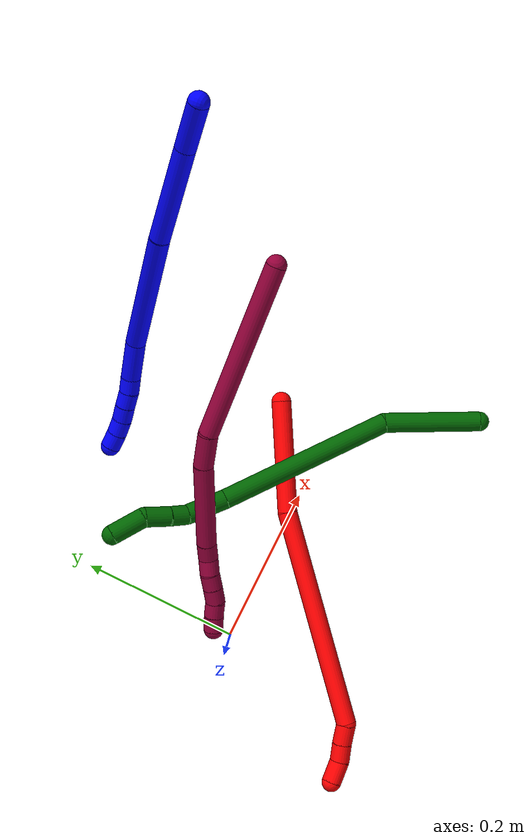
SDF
<sdf version="1.7">
 <world name="default">
  <model name="1">
   <static>0</static>
   <link name="1">
    <collision name="collision-cylinder-e_1_1_4">
     <pose>-0.020638 0.021391 0.005753 -1.30808 -0.750046 0.586164</pose>
     <geometry><cylinder><radius>0.0125</radius><length>0.06055</length></cylinder></geometry>
     <surface>
      <friction><ode><mu>1.16</mu><mu2>1.16</mu2><slip1>0</slip1><slip2>0</slip2></ode></friction>
      <contact><ode><kp>1e+06</kp><kd>1</kd><max_vel>0</max_vel><min_depth>0.001</min_depth></ode></contact>
     </surface>
    </collision>
    <visual name="visual-cylinder-e_1_1_4">
     <pose>-0.020638 0.021391 0.005753 -1.30808 -0.750046 0.586164</pose>
     <geometry><cylinder><radius>0.0125</radius><length>0.06055</length></cylinder></geometry>
     <material><ambient>0 0 1 1</ambient></material>
    </visual>
    <collision name="collision-cylinder-e_2_4_5">
     <pose>-0.086302 0.082443 0.020319 -1.35214 -0.836699 0.685168</pose>
     <geometry><cylinder><radius>0.0125</radius><length>0.121293</length></cylinder></geometry>
     <surface>
      <friction><ode><mu>1.16</mu><mu2>1.16</mu2><slip1>0</slip1><slip2>0</slip2></ode></friction>
      <contact><ode><kp>1e+06</kp><kd>1</kd><max_vel>0</max_vel><min_depth>0.001</min_depth></ode></contact>
     </surface>
    </collision>
    <visual name="visual-cylinder-e_2_4_5">
     <pose>-0.086302 0.082443 0.020319 -1.35214 -0.836699 0.685168</pose>
     <geometry><cylinder><radius>0.0125</radius><length>0.121293</length></cylinder></geometry>
     <material><ambient>0 0 1 1</ambient></material>
    </visual>
    <collision name="collision-cylinder-e_3_5_6">
     <pose>-0.187202 0.182562 0.041622 -1.36706 -0.735607 0.608257</pose>
     <geometry><cylinder><radius>0.0125</radius><length>0.166531</length></cylinder></geometry>
     <surface>
      <friction><ode><mu>1.16</mu><mu2>1.16</mu2><slip1>0</slip1><slip2>0</slip2></ode></friction>
      <contact><ode><kp>1e+06</kp><kd>1</kd><max_vel>0</max_vel><min_depth>0.001</min_depth></ode></contact>
     </surface>
    </collision>
    <visual name="visual-cylinder-e_3_5_6">
     <pose>-0.187202 0.182562 0.041622 -1.36706 -0.735607 0.608257</pose>
     <geometry><cylinder><radius>0.0125</radius><length>0.166531</length></cylinder></geometry>
     <material><ambient>0 0 1 1</ambient></material>
    </visual>
    <collision name="collision-cylinder-e_4_6_7">
     <pose>-0.263489 0.258653 0.053572 -1.60537 -0.916945 0.944677</pose>
     <geometry><cylinder><radius>0.0125</radius><length>0.051432</length></cylinder></geometry>
     <surface>
      <friction><ode><mu>1.16</mu><mu2>1.16</mu2><slip1>0</slip1><slip2>0</slip2></ode></friction>
      <contact><ode><kp>1e+06</kp><kd>1</kd><max_vel>0</max_vel><min_depth>0.001</min_depth></ode></contact>
     </surface>
    </collision>
    <visual name="visual-cylinder-e_4_6_7">
     <pose>-0.263489 0.258653 0.053572 -1.60537 -0.916945 0.944677</pose>
     <geometry><cylinder><radius>0.0125</radius><length>0.051432</length></cylinder></geometry>
     <material><ambient>0 0 1 1</ambient></material>
    </visual>
    <collision name="collision-cylinder-e_5_7_8">
     <pose>-0.292468 0.279344 0.051887 -1.79339 -1.0264 1.22866</pose>
     <geometry><cylinder><radius>0.0125</radius><length>0.020029</length></cylinder></geometry>
     <surface>
      <friction><ode><mu>1.16</mu><mu2>1.16</mu2><slip1>0</slip1><slip2>0</slip2></ode></friction>
      <contact><ode><kp>1e+06</kp><kd>1</kd><max_vel>0</max_vel><min_depth>0.001</min_depth></ode></contact>
     </surface>
    </collision>
    <visual name="visual-cylinder-e_5_7_8">
     <pose>-0.292468 0.279344 0.051887 -1.79339 -1.0264 1.22866</pose>
     <geometry><cylinder><radius>0.0125</radius><length>0.020029</length></cylinder></geometry>
     <material><ambient>0 0 1 1</ambient></material>
    </visual>
    <collision name="collision-cylinder-e_6_8_9">
     <pose>-0.309972 0.289048 0.050832 -1.55131 -1.09143 1.07421</pose>
     <geometry><cylinder><radius>0.0125</radius><length>0.020146</length></cylinder></geometry>
     <surface>
      <friction><ode><mu>1.16</mu><mu2>1.16</mu2><slip1>0</slip1><slip2>0</slip2></ode></friction>
      <contact><ode><kp>1e+06</kp><kd>1</kd><max_vel>0</max_vel><min_depth>0.001</min_depth></ode></contact>
     </surface>
    </collision>
    <visual name="visual-cylinder-e_6_8_9">
     <pose>-0.309972 0.289048 0.050832 -1.55131 -1.09143 1.07421</pose>
     <geometry><cylinder><radius>0.0125</radius><length>0.020146</length></cylinder></geometry>
     <material><ambient>0 0 1 1</ambient></material>
    </visual>
    <collision name="collision-cylinder-e_7_9_10">
     <pose>-0.327579 0.298693 0.050894 -1.57656 -1.04761 1.05261</pose>
     <geometry><cylinder><radius>0.0125</radius><length>0.020016</length></cylinder></geometry>
     <surface>
      <friction><ode><mu>1.16</mu><mu2>1.16</mu2><slip1>0</slip1><slip2>0</slip2></ode></friction>
      <contact><ode><kp>1e+06</kp><kd>1</kd><max_vel>0</max_vel><min_depth>0.001</min_depth></ode></contact>
     </surface>
    </collision>
    <visual name="visual-cylinder-e_7_9_10">
     <pose>-0.327579 0.298693 0.050894 -1.57656 -1.04761 1.05261</pose>
     <geometry><cylinder><radius>0.0125</radius><length>0.020016</length></cylinder></geometry>
     <material><ambient>0 0 1 1</ambient></material>
    </visual>
    <collision name="collision-cylinder-e_8_10_11">
     <pose>-0.345413 0.307647 0.051481 -1.41634 -1.15911 1.02175</pose>
     <geometry><cylinder><radius>0.0125</radius><length>0.020001</length></cylinder></geometry>
     <surface>
      <friction><ode><mu>1.16</mu><mu2>1.16</mu2><slip1>0</slip1><slip2>0</slip2></ode></friction>
      <contact><ode><kp>1e+06</kp><kd>1</kd><max_vel>0</max_vel><min_depth>0.001</min_depth></ode></contact>
     </surface>
    </collision>
    <visual name="visual-cylinder-e_8_10_11">
     <pose>-0.345413 0.307647 0.051481 -1.41634 -1.15911 1.02175</pose>
     <geometry><cylinder><radius>0.0125</radius><length>0.020001</length></cylinder></geometry>
     <material><ambient>0 0 1 1</ambient></material>
    </visual>
    <collision name="collision-cylinder-e_9_11_2">
     <pose>-0.363948 0.314843 0.053401 -1.18817 -1.2139 0.877162</pose>
     <geometry><cylinder><radius>0.0125</radius><length>0.020001</length></cylinder></geometry>
     <surface>
      <friction><ode><mu>1.16</mu><mu2>1.16</mu2><slip1>0</slip1><slip2>0</slip2></ode></friction>
      <contact><ode><kp>1e+06</kp><kd>1</kd><max_vel>0</max_vel><min_depth>0.001</min_depth></ode></contact>
     </surface>
    </collision>
    <visual name="visual-cylinder-e_9_11_2">
     <pose>-0.363948 0.314843 0.053401 -1.18817 -1.2139 0.877162</pose>
     <geometry><cylinder><radius>0.0125</radius><length>0.020001</length></cylinder></geometry>
     <material><ambient>0 0 1 1</ambient></material>
    </visual>
    <collision name="collision-sphere-2">
     <pose>-0.373318 0.318084 0.054705 0 -0 0</pose>
     <geometry><sphere><radius>0.0125</radius></sphere></geometry>
     <surface>
      <friction><ode><mu>1.16</mu><mu2>1.16</mu2><slip1>0</slip1><slip2>0</slip2></ode></friction>
      <contact><ode><kp>1e+06</kp><kd>1</kd><max_vel>0</max_vel><min_depth>0.001</min_depth></ode></contact>
     </surface>
    </collision>
    <visual name="visual-sphere-2">
     <pose>-0.373318 0.318084 0.054705 0 -0 0</pose>
     <geometry><sphere><radius>0.0125</radius></sphere></geometry>
     <material><ambient>0 0 1 1</ambient></material>
    </visual>
    <collision name="collision-sphere-11">
     <pose>-0.354578 0.311601 0.052096 0 -0 0</pose>
     <geometry><sphere><radius>0.0125</radius></sphere></geometry>
     <surface>
      <friction><ode><mu>1.16</mu><mu2>1.16</mu2><slip1>0</slip1><slip2>0</slip2></ode></friction>
      <contact><ode><kp>1e+06</kp><kd>1</kd><max_vel>0</max_vel><min_depth>0.001</min_depth></ode></contact>
     </surface>
    </collision>
    <visual name="visual-sphere-11">
     <pose>-0.354578 0.311601 0.052096 0 -0 0</pose>
     <geometry><sphere><radius>0.0125</radius></sphere></geometry>
     <material><ambient>0 0 1 1</ambient></material>
    </visual>
    <collision name="collision-sphere-10">
     <pose>-0.336248 0.303693 0.050865 0 -0 0</pose>
     <geometry><sphere><radius>0.0125</radius></sphere></geometry>
     <surface>
      <friction><ode><mu>1.16</mu><mu2>1.16</mu2><slip1>0</slip1><slip2>0</slip2></ode></friction>
      <contact><ode><kp>1e+06</kp><kd>1</kd><max_vel>0</max_vel><min_depth>0.001</min_depth></ode></contact>
     </surface>
    </collision>
    <visual name="visual-sphere-10">
     <pose>-0.336248 0.303693 0.050865 0 -0 0</pose>
     <geometry><sphere><radius>0.0125</radius></sphere></geometry>
     <material><ambient>0 0 1 1</ambient></material>
    </visual>
    <collision name="collision-sphere-9">
     <pose>-0.31891 0.293693 0.050923 0 -0 0</pose>
     <geometry><sphere><radius>0.0125</radius></sphere></geometry>
     <surface>
      <friction><ode><mu>1.16</mu><mu2>1.16</mu2><slip1>0</slip1><slip2>0</slip2></ode></friction>
      <contact><ode><kp>1e+06</kp><kd>1</kd><max_vel>0</max_vel><min_depth>0.001</min_depth></ode></contact>
     </surface>
    </collision>
    <visual name="visual-sphere-9">
     <pose>-0.31891 0.293693 0.050923 0 -0 0</pose>
     <geometry><sphere><radius>0.0125</radius></sphere></geometry>
     <material><ambient>0 0 1 1</ambient></material>
    </visual>
    <collision name="collision-sphere-4">
     <pose>-0.041275 0.042782 0.011506 0 -0 0</pose>
     <geometry><sphere><radius>0.0125</radius></sphere></geometry>
     <surface>
      <friction><ode><mu>1.16</mu><mu2>1.16</mu2><slip1>0</slip1><slip2>0</slip2></ode></friction>
      <contact><ode><kp>1e+06</kp><kd>1</kd><max_vel>0</max_vel><min_depth>0.001</min_depth></ode></contact>
     </surface>
    </collision>
    <visual name="visual-sphere-4">
     <pose>-0.041275 0.042782 0.011506 0 -0 0</pose>
     <geometry><sphere><radius>0.0125</radius></sphere></geometry>
     <material><ambient>0 0 1 1</ambient></material>
    </visual>
    <collision name="collision-sphere-1">
     <geometry><sphere><radius>0.0125</radius></sphere></geometry>
     <surface>
      <friction><ode><mu>1.16</mu><mu2>1.16</mu2><slip1>0</slip1><slip2>0</slip2></ode></friction>
      <contact><ode><kp>1e+06</kp><kd>1</kd><max_vel>0</max_vel><min_depth>0.001</min_depth></ode></contact>
     </surface>
    </collision>
    <visual name="visual-sphere-1">
     <geometry><sphere><radius>0.0125</radius></sphere></geometry>
     <material><ambient>0 0 1 1</ambient></material>
    </visual>
    <collision name="collision-sphere-8">
     <pose>-0.301035 0.284403 0.050742 0 -0 0</pose>
     <geometry><sphere><radius>0.0125</radius></sphere></geometry>
     <surface>
      <friction><ode><mu>1.16</mu><mu2>1.16</mu2><slip1>0</slip1><slip2>0</slip2></ode></friction>
      <contact><ode><kp>1e+06</kp><kd>1</kd><max_vel>0</max_vel><min_depth>0.001</min_depth></ode></contact>
     </surface>
    </collision>
    <visual name="visual-sphere-8">
     <pose>-0.301035 0.284403 0.050742 0 -0 0</pose>
     <geometry><sphere><radius>0.0125</radius></sphere></geometry>
     <material><ambient>0 0 1 1</ambient></material>
    </visual>
    <collision name="collision-sphere-5">
     <pose>-0.131328 0.122104 0.029131 0 -0 0</pose>
     <geometry><sphere><radius>0.0125</radius></sphere></geometry>
     <surface>
      <friction><ode><mu>1.16</mu><mu2>1.16</mu2><slip1>0</slip1><slip2>0</slip2></ode></friction>
      <contact><ode><kp>1e+06</kp><kd>1</kd><max_vel>0</max_vel><min_depth>0.001</min_depth></ode></contact>
     </surface>
    </collision>
    <visual name="visual-sphere-5">
     <pose>-0.131328 0.122104 0.029131 0 -0 0</pose>
     <geometry><sphere><radius>0.0125</radius></sphere></geometry>
     <material><ambient>0 0 1 1</ambient></material>
    </visual>
    <collision name="collision-sphere-6">
     <pose>-0.243077 0.24302 0.054113 0 -0 0</pose>
     <geometry><sphere><radius>0.0125</radius></sphere></geometry>
     <surface>
      <friction><ode><mu>1.16</mu><mu2>1.16</mu2><slip1>0</slip1><slip2>0</slip2></ode></friction>
      <contact><ode><kp>1e+06</kp><kd>1</kd><max_vel>0</max_vel><min_depth>0.001</min_depth></ode></contact>
     </surface>
    </collision>
    <visual name="visual-sphere-6">
     <pose>-0.243077 0.24302 0.054113 0 -0 0</pose>
     <geometry><sphere><radius>0.0125</radius></sphere></geometry>
     <material><ambient>0 0 1 1</ambient></material>
    </visual>
    <collision name="collision-sphere-7">
     <pose>-0.283901 0.274285 0.053032 0 -0 0</pose>
     <geometry><sphere><radius>0.0125</radius></sphere></geometry>
     <surface>
      <friction><ode><mu>1.16</mu><mu2>1.16</mu2><slip1>0</slip1><slip2>0</slip2></ode></friction>
      <contact><ode><kp>1e+06</kp><kd>1</kd><max_vel>0</max_vel><min_depth>0.001</min_depth></ode></contact>
     </surface>
    </collision>
    <visual name="visual-sphere-7">
     <pose>-0.283901 0.274285 0.053032 0 -0 0</pose>
     <geometry><sphere><radius>0.0125</radius></sphere></geometry>
     <material><ambient>0 0 1 1</ambient></material>
    </visual>
    <inertial>
     <pose>-0.178583 0.169695 0.035359 0 -0 0</pose>
     <mass>0.5</mass>
     <inertia><ixx>0.000556</ixx><ixy>0</ixy><ixz>0</ixz><iyy>0.000608</iyy><iyz>0</iyz><izz>2e-06</izz></inertia>
    </inertial>
   </link>
   <pose>0.524957 0.285271 0.331206 -1.88011 0.004391 -0.009671</pose>
  </model>
  <model name="2">
   <static>0</static>
   <link name="2">
    <collision name="collision-cylinder-e_1_1_4">
     <pose>-0.042229 -0.039448 0.041165 0.764108 -0.637508 -0.263654</pose>
     <geometry><cylinder><radius>0.0125</radius><length>0.141901</length></cylinder></geometry>
     <surface>
      <friction><ode><mu>1.16</mu><mu2>1.16</mu2><slip1>0</slip1><slip2>0</slip2></ode></friction>
      <contact><ode><kp>1e+06</kp><kd>1</kd><max_vel>0</max_vel><min_depth>0.001</min_depth></ode></contact>
     </surface>
    </collision>
    <visual name="visual-cylinder-e_1_1_4">
     <pose>-0.042229 -0.039448 0.041165 0.764108 -0.637508 -0.263654</pose>
     <geometry><cylinder><radius>0.0125</radius><length>0.141901</length></cylinder></geometry>
     <material><ambient>1 0 0 1</ambient></material>
    </visual>
    <collision name="collision-cylinder-e_2_4_5">
     <pose>-0.142132 -0.172266 0.168196 0.827233 -0.426721 -0.189629</pose>
     <geometry><cylinder><radius>0.0125</radius><length>0.278691</length></cylinder></geometry>
     <surface>
      <friction><ode><mu>1.16</mu><mu2>1.16</mu2><slip1>0</slip1><slip2>0</slip2></ode></friction>
      <contact><ode><kp>1e+06</kp><kd>1</kd><max_vel>0</max_vel><min_depth>0.001</min_depth></ode></contact>
     </surface>
    </collision>
    <visual name="visual-cylinder-e_2_4_5">
     <pose>-0.142132 -0.172266 0.168196 0.827233 -0.426721 -0.189629</pose>
     <geometry><cylinder><radius>0.0125</radius><length>0.278691</length></cylinder></geometry>
     <material><ambient>1 0 0 1</ambient></material>
    </visual>
    <collision name="collision-cylinder-e_3_5_6">
     <pose>-0.210609 -0.271937 0.258849 0.921213 -0.938615 -0.493011</pose>
     <geometry><cylinder><radius>0.0125</radius><length>0.026783</length></cylinder></geometry>
     <surface>
      <friction><ode><mu>1.16</mu><mu2>1.16</mu2><slip1>0</slip1><slip2>0</slip2></ode></friction>
      <contact><ode><kp>1e+06</kp><kd>1</kd><max_vel>0</max_vel><min_depth>0.001</min_depth></ode></contact>
     </surface>
    </collision>
    <visual name="visual-cylinder-e_3_5_6">
     <pose>-0.210609 -0.271937 0.258849 0.921213 -0.938615 -0.493011</pose>
     <geometry><cylinder><radius>0.0125</radius><length>0.026783</length></cylinder></geometry>
     <material><ambient>1 0 0 1</ambient></material>
    </visual>
    <collision name="collision-cylinder-e_4_6_7">
     <pose>-0.230439 -0.284238 0.268657 0.873883 -0.856595 -0.420181</pose>
     <geometry><cylinder><radius>0.0125</radius><length>0.023891</length></cylinder></geometry>
     <surface>
      <friction><ode><mu>1.16</mu><mu2>1.16</mu2><slip1>0</slip1><slip2>0</slip2></ode></friction>
      <contact><ode><kp>1e+06</kp><kd>1</kd><max_vel>0</max_vel><min_depth>0.001</min_depth></ode></contact>
     </surface>
    </collision>
    <visual name="visual-cylinder-e_4_6_7">
     <pose>-0.230439 -0.284238 0.268657 0.873883 -0.856595 -0.420181</pose>
     <geometry><cylinder><radius>0.0125</radius><length>0.023891</length></cylinder></geometry>
     <material><ambient>1 0 0 1</ambient></material>
    </visual>
    <collision name="collision-cylinder-e_5_7_2">
     <pose>-0.251486 -0.293252 0.280948 0.393015 -0.991182 -0.214413</pose>
     <geometry><cylinder><radius>0.0125</radius><length>0.028733</length></cylinder></geometry>
     <surface>
      <friction><ode><mu>1.16</mu><mu2>1.16</mu2><slip1>0</slip1><slip2>0</slip2></ode></friction>
      <contact><ode><kp>1e+06</kp><kd>1</kd><max_vel>0</max_vel><min_depth>0.001</min_depth></ode></contact>
     </surface>
    </collision>
    <visual name="visual-cylinder-e_5_7_2">
     <pose>-0.251486 -0.293252 0.280948 0.393015 -0.991182 -0.214413</pose>
     <geometry><cylinder><radius>0.0125</radius><length>0.028733</length></cylinder></geometry>
     <material><ambient>1 0 0 1</ambient></material>
    </visual>
    <collision name="collision-sphere-2">
     <pose>-0.263506 -0.296265 0.288217 0 -0 0</pose>
     <geometry><sphere><radius>0.0125</radius></sphere></geometry>
     <surface>
      <friction><ode><mu>1.16</mu><mu2>1.16</mu2><slip1>0</slip1><slip2>0</slip2></ode></friction>
      <contact><ode><kp>1e+06</kp><kd>1</kd><max_vel>0</max_vel><min_depth>0.001</min_depth></ode></contact>
     </surface>
    </collision>
    <visual name="visual-sphere-2">
     <pose>-0.263506 -0.296265 0.288217 0 -0 0</pose>
     <geometry><sphere><radius>0.0125</radius></sphere></geometry>
     <material><ambient>1 0 0 1</ambient></material>
    </visual>
    <collision name="collision-sphere-7">
     <pose>-0.239466 -0.290238 0.27368 0 -0 0</pose>
     <geometry><sphere><radius>0.0125</radius></sphere></geometry>
     <surface>
      <friction><ode><mu>1.16</mu><mu2>1.16</mu2><slip1>0</slip1><slip2>0</slip2></ode></friction>
      <contact><ode><kp>1e+06</kp><kd>1</kd><max_vel>0</max_vel><min_depth>0.001</min_depth></ode></contact>
     </surface>
    </collision>
    <visual name="visual-sphere-7">
     <pose>-0.239466 -0.290238 0.27368 0 -0 0</pose>
     <geometry><sphere><radius>0.0125</radius></sphere></geometry>
     <material><ambient>1 0 0 1</ambient></material>
    </visual>
    <collision name="collision-sphere-6">
     <pose>-0.221413 -0.278238 0.263635 0 -0 0</pose>
     <geometry><sphere><radius>0.0125</radius></sphere></geometry>
     <surface>
      <friction><ode><mu>1.16</mu><mu2>1.16</mu2><slip1>0</slip1><slip2>0</slip2></ode></friction>
      <contact><ode><kp>1e+06</kp><kd>1</kd><max_vel>0</max_vel><min_depth>0.001</min_depth></ode></contact>
     </surface>
    </collision>
    <visual name="visual-sphere-6">
     <pose>-0.221413 -0.278238 0.263635 0 -0 0</pose>
     <geometry><sphere><radius>0.0125</radius></sphere></geometry>
     <material><ambient>1 0 0 1</ambient></material>
    </visual>
    <collision name="collision-sphere-5">
     <pose>-0.199806 -0.265635 0.254063 0 -0 0</pose>
     <geometry><sphere><radius>0.0125</radius></sphere></geometry>
     <surface>
      <friction><ode><mu>1.16</mu><mu2>1.16</mu2><slip1>0</slip1><slip2>0</slip2></ode></friction>
      <contact><ode><kp>1e+06</kp><kd>1</kd><max_vel>0</max_vel><min_depth>0.001</min_depth></ode></contact>
     </surface>
    </collision>
    <visual name="visual-sphere-5">
     <pose>-0.199806 -0.265635 0.254063 0 -0 0</pose>
     <geometry><sphere><radius>0.0125</radius></sphere></geometry>
     <material><ambient>1 0 0 1</ambient></material>
    </visual>
    <collision name="collision-sphere-1">
     <geometry><sphere><radius>0.0125</radius></sphere></geometry>
     <surface>
      <friction><ode><mu>1.16</mu><mu2>1.16</mu2><slip1>0</slip1><slip2>0</slip2></ode></friction>
      <contact><ode><kp>1e+06</kp><kd>1</kd><max_vel>0</max_vel><min_depth>0.001</min_depth></ode></contact>
     </surface>
    </collision>
    <visual name="visual-sphere-1">
     <geometry><sphere><radius>0.0125</radius></sphere></geometry>
     <material><ambient>1 0 0 1</ambient></material>
    </visual>
    <collision name="collision-sphere-4">
     <pose>-0.084459 -0.078896 0.082329 0 -0 0</pose>
     <geometry><sphere><radius>0.0125</radius></sphere></geometry>
     <surface>
      <friction><ode><mu>1.16</mu><mu2>1.16</mu2><slip1>0</slip1><slip2>0</slip2></ode></friction>
      <contact><ode><kp>1e+06</kp><kd>1</kd><max_vel>0</max_vel><min_depth>0.001</min_depth></ode></contact>
     </surface>
    </collision>
    <visual name="visual-sphere-4">
     <pose>-0.084459 -0.078896 0.082329 0 -0 0</pose>
     <geometry><sphere><radius>0.0125</radius></sphere></geometry>
     <material><ambient>1 0 0 1</ambient></material>
    </visual>
    <inertial>
     <pose>-0.127951 -0.152214 0.14828 0 -0 0</pose>
     <mass>0.5</mass>
     <inertia>
      <ixx>0.001431</ixx>
      <ixy>0</ixy>
      <ixz>0</ixz>
      <iyy>0.001126</iyy>
      <iyz>0</iyz>
      <izz>0.002279</izz>
     </inertia>
    </inertial>
   </link>
   <pose>0.297724 0.0742 0.012527 0.572448 -0.298946 -0.380777</pose>
  </model>
  <model name="6">
   <static>0</static>
   <link name="6">
    <collision name="collision-cylinder-e_1_1_4">
     <pose>-0.031332 -0.012402 -0.050602 2.90123 -0.541429 -2.32075</pose>
     <geometry><cylinder><radius>0.0125</radius><length>0.121591</length></cylinder></geometry>
     <surface>
      <friction><ode><mu>1.16</mu><mu2>1.16</mu2><slip1>0</slip1><slip2>0</slip2></ode></friction>
      <contact><ode><kp>1e+06</kp><kd>1</kd><max_vel>0</max_vel><min_depth>0.001</min_depth></ode></contact>
     </surface>
    </collision>
    <visual name="visual-cylinder-e_1_1_4">
     <pose>-0.031332 -0.012402 -0.050602 2.90123 -0.541429 -2.32075</pose>
     <geometry><cylinder><radius>0.0125</radius><length>0.121591</length></cylinder></geometry>
     <material><ambient>0 0.392157 0.003922 1</ambient></material>
    </visual>
    <collision name="collision-cylinder-e_2_4_5">
     <pose>-0.154934 -0.028267 -0.165917 3.08813 -0.95851 -3.03879</pose>
     <geometry><cylinder><radius>0.0125</radius><length>0.22551</length></cylinder></geometry>
     <surface>
      <friction><ode><mu>1.16</mu><mu2>1.16</mu2><slip1>0</slip1><slip2>0</slip2></ode></friction>
      <contact><ode><kp>1e+06</kp><kd>1</kd><max_vel>0</max_vel><min_depth>0.001</min_depth></ode></contact>
     </surface>
    </collision>
    <visual name="visual-cylinder-e_2_4_5">
     <pose>-0.154934 -0.028267 -0.165917 3.08813 -0.95851 -3.03879</pose>
     <geometry><cylinder><radius>0.0125</radius><length>0.22551</length></cylinder></geometry>
     <material><ambient>0 0.392157 0.003922 1</ambient></material>
    </visual>
    <collision name="collision-cylinder-e_3_5_6">
     <pose>-0.267034 -0.028832 -0.24775 -2.97392 -0.851527 2.77515</pose>
     <geometry><cylinder><radius>0.0125</radius><length>0.052714</length></cylinder></geometry>
     <surface>
      <friction><ode><mu>1.16</mu><mu2>1.16</mu2><slip1>0</slip1><slip2>0</slip2></ode></friction>
      <contact><ode><kp>1e+06</kp><kd>1</kd><max_vel>0</max_vel><min_depth>0.001</min_depth></ode></contact>
     </surface>
    </collision>
    <visual name="visual-cylinder-e_3_5_6">
     <pose>-0.267034 -0.028832 -0.24775 -2.97392 -0.851527 2.77515</pose>
     <geometry><cylinder><radius>0.0125</radius><length>0.052714</length></cylinder></geometry>
     <material><ambient>0 0.392157 0.003922 1</ambient></material>
    </visual>
    <collision name="collision-cylinder-e_4_6_7">
     <pose>-0.292637 -0.023756 -0.274366 -2.91615 -0.535128 2.35837</pose>
     <geometry><cylinder><radius>0.0125</radius><length>0.022649</length></cylinder></geometry>
     <surface>
      <friction><ode><mu>1.16</mu><mu2>1.16</mu2><slip1>0</slip1><slip2>0</slip2></ode></friction>
      <contact><ode><kp>1e+06</kp><kd>1</kd><max_vel>0</max_vel><min_depth>0.001</min_depth></ode></contact>
     </surface>
    </collision>
    <visual name="visual-cylinder-e_4_6_7">
     <pose>-0.292637 -0.023756 -0.274366 -2.91615 -0.535128 2.35837</pose>
     <geometry><cylinder><radius>0.0125</radius><length>0.022649</length></cylinder></geometry>
     <material><ambient>0 0.392157 0.003922 1</ambient></material>
    </visual>
    <collision name="collision-cylinder-e_5_7_8">
     <pose>-0.306318 -0.019605 -0.298232 -3.00508 -0.499004 2.61736</pose>
     <geometry><cylinder><radius>0.0125</radius><length>0.033041</length></cylinder></geometry>
     <surface>
      <friction><ode><mu>1.16</mu><mu2>1.16</mu2><slip1>0</slip1><slip2>0</slip2></ode></friction>
      <contact><ode><kp>1e+06</kp><kd>1</kd><max_vel>0</max_vel><min_depth>0.001</min_depth></ode></contact>
     </surface>
    </collision>
    <visual name="visual-cylinder-e_5_7_8">
     <pose>-0.306318 -0.019605 -0.298232 -3.00508 -0.499004 2.61736</pose>
     <geometry><cylinder><radius>0.0125</radius><length>0.033041</length></cylinder></geometry>
     <material><ambient>0 0.392157 0.003922 1</ambient></material>
    </visual>
    <collision name="collision-cylinder-e_6_8_2">
     <pose>-0.333106 -0.017655 -0.324368 3.13956 -1.01361 -3.13794</pose>
     <geometry><cylinder><radius>0.0125</radius><length>0.044496</length></cylinder></geometry>
     <surface>
      <friction><ode><mu>1.16</mu><mu2>1.16</mu2><slip1>0</slip1><slip2>0</slip2></ode></friction>
      <contact><ode><kp>1e+06</kp><kd>1</kd><max_vel>0</max_vel><min_depth>0.001</min_depth></ode></contact>
     </surface>
    </collision>
    <visual name="visual-cylinder-e_6_8_2">
     <pose>-0.333106 -0.017655 -0.324368 3.13956 -1.01361 -3.13794</pose>
     <geometry><cylinder><radius>0.0125</radius><length>0.044496</length></cylinder></geometry>
     <material><ambient>0 0.392157 0.003922 1</ambient></material>
    </visual>
    <collision name="collision-sphere-2">
     <pose>-0.351989 -0.017678 -0.336132 0 -0 0</pose>
     <geometry><sphere><radius>0.0125</radius></sphere></geometry>
     <surface>
      <friction><ode><mu>1.16</mu><mu2>1.16</mu2><slip1>0</slip1><slip2>0</slip2></ode></friction>
      <contact><ode><kp>1e+06</kp><kd>1</kd><max_vel>0</max_vel><min_depth>0.001</min_depth></ode></contact>
     </surface>
    </collision>
    <visual name="visual-sphere-2">
     <pose>-0.351989 -0.017678 -0.336132 0 -0 0</pose>
     <geometry><sphere><radius>0.0125</radius></sphere></geometry>
     <material><ambient>0 0.392157 0.003922 1</ambient></material>
    </visual>
    <collision name="collision-sphere-4">
     <pose>-0.062663 -0.024805 -0.101204 0 -0 0</pose>
     <geometry><sphere><radius>0.0125</radius></sphere></geometry>
     <surface>
      <friction><ode><mu>1.16</mu><mu2>1.16</mu2><slip1>0</slip1><slip2>0</slip2></ode></friction>
      <contact><ode><kp>1e+06</kp><kd>1</kd><max_vel>0</max_vel><min_depth>0.001</min_depth></ode></contact>
     </surface>
    </collision>
    <visual name="visual-sphere-4">
     <pose>-0.062663 -0.024805 -0.101204 0 -0 0</pose>
     <geometry><sphere><radius>0.0125</radius></sphere></geometry>
     <material><ambient>0 0.392157 0.003922 1</ambient></material>
    </visual>
    <collision name="collision-sphere-1">
     <geometry><sphere><radius>0.0125</radius></sphere></geometry>
     <surface>
      <friction><ode><mu>1.16</mu><mu2>1.16</mu2><slip1>0</slip1><slip2>0</slip2></ode></friction>
      <contact><ode><kp>1e+06</kp><kd>1</kd><max_vel>0</max_vel><min_depth>0.001</min_depth></ode></contact>
     </surface>
    </collision>
    <visual name="visual-sphere-1">
     <geometry><sphere><radius>0.0125</radius></sphere></geometry>
     <material><ambient>0 0.392157 0.003922 1</ambient></material>
    </visual>
    <collision name="collision-sphere-8">
     <pose>-0.314224 -0.017631 -0.312603 0 -0 0</pose>
     <geometry><sphere><radius>0.0125</radius></sphere></geometry>
     <surface>
      <friction><ode><mu>1.16</mu><mu2>1.16</mu2><slip1>0</slip1><slip2>0</slip2></ode></friction>
      <contact><ode><kp>1e+06</kp><kd>1</kd><max_vel>0</max_vel><min_depth>0.001</min_depth></ode></contact>
     </surface>
    </collision>
    <visual name="visual-sphere-8">
     <pose>-0.314224 -0.017631 -0.312603 0 -0 0</pose>
     <geometry><sphere><radius>0.0125</radius></sphere></geometry>
     <material><ambient>0 0.392157 0.003922 1</ambient></material>
    </visual>
    <collision name="collision-sphere-5">
     <pose>-0.247206 -0.03173 -0.230629 0 -0 0</pose>
     <geometry><sphere><radius>0.0125</radius></sphere></geometry>
     <surface>
      <friction><ode><mu>1.16</mu><mu2>1.16</mu2><slip1>0</slip1><slip2>0</slip2></ode></friction>
      <contact><ode><kp>1e+06</kp><kd>1</kd><max_vel>0</max_vel><min_depth>0.001</min_depth></ode></contact>
     </surface>
    </collision>
    <visual name="visual-sphere-5">
     <pose>-0.247206 -0.03173 -0.230629 0 -0 0</pose>
     <geometry><sphere><radius>0.0125</radius></sphere></geometry>
     <material><ambient>0 0.392157 0.003922 1</ambient></material>
    </visual>
    <collision name="collision-sphere-6">
     <pose>-0.286862 -0.025934 -0.264872 0 -0 0</pose>
     <geometry><sphere><radius>0.0125</radius></sphere></geometry>
     <surface>
      <friction><ode><mu>1.16</mu><mu2>1.16</mu2><slip1>0</slip1><slip2>0</slip2></ode></friction>
      <contact><ode><kp>1e+06</kp><kd>1</kd><max_vel>0</max_vel><min_depth>0.001</min_depth></ode></contact>
     </surface>
    </collision>
    <visual name="visual-sphere-6">
     <pose>-0.286862 -0.025934 -0.264872 0 -0 0</pose>
     <geometry><sphere><radius>0.0125</radius></sphere></geometry>
     <material><ambient>0 0.392157 0.003922 1</ambient></material>
    </visual>
    <collision name="collision-sphere-7">
     <pose>-0.298412 -0.021579 -0.283861 0 -0 0</pose>
     <geometry><sphere><radius>0.0125</radius></sphere></geometry>
     <surface>
      <friction><ode><mu>1.16</mu><mu2>1.16</mu2><slip1>0</slip1><slip2>0</slip2></ode></friction>
      <contact><ode><kp>1e+06</kp><kd>1</kd><max_vel>0</max_vel><min_depth>0.001</min_depth></ode></contact>
     </surface>
    </collision>
    <visual name="visual-sphere-7">
     <pose>-0.298412 -0.021579 -0.283861 0 -0 0</pose>
     <geometry><sphere><radius>0.0125</radius></sphere></geometry>
     <material><ambient>0 0.392157 0.003922 1</ambient></material>
    </visual>
    <inertial>
     <pose>-0.168792 -0.022748 -0.174259 0 -0 0</pose>
     <mass>0.5</mass>
     <inertia>
      <ixx>-0.000835</ixx>
      <ixy>0</ixy>
      <ixz>0</ixz>
      <iyy>0.000958</iyy>
      <iyz>0</iyz>
      <izz>0.000923</izz>
     </inertia>
    </inertial>
   </link>
   <pose>0.387453 -0.163086 0.014092 1.87628 -0.023308 -0.066012</pose>
  </model>
  <model name="8">
   <static>0</static>
   <link name="8">
    <collision name="collision-cylinder-e_1_1_4">
     <pose>-0.062608 -0.026342 -0.086841 2.84708 -0.60392 -2.25273</pose>
     <geometry><cylinder><radius>0.0125</radius><length>0.2205</length></cylinder></geometry>
     <surface>
      <friction><ode><mu>1.16</mu><mu2>1.16</mu2><slip1>0</slip1><slip2>0</slip2></ode></friction>
      <contact><ode><kp>1e+06</kp><kd>1</kd><max_vel>0</max_vel><min_depth>0.001</min_depth></ode></contact>
     </surface>
    </collision>
    <visual name="visual-cylinder-e_1_1_4">
     <pose>-0.062608 -0.026342 -0.086841 2.84708 -0.60392 -2.25273</pose>
     <geometry><cylinder><radius>0.0125</radius><length>0.2205</length></cylinder></geometry>
     <material><ambient>0.584314 0 0.227451 1</ambient></material>
    </visual>
    <collision name="collision-cylinder-e_2_4_5">
     <pose>-0.132724 -0.058599 -0.193383 2.84991 -0.349964 -1.75505</pose>
     <geometry><cylinder><radius>0.0125</radius><length>0.043794</length></cylinder></geometry>
     <surface>
      <friction><ode><mu>1.16</mu><mu2>1.16</mu2><slip1>0</slip1><slip2>0</slip2></ode></friction>
      <contact><ode><kp>1e+06</kp><kd>1</kd><max_vel>0</max_vel><min_depth>0.001</min_depth></ode></contact>
     </surface>
    </collision>
    <visual name="visual-cylinder-e_2_4_5">
     <pose>-0.132724 -0.058599 -0.193383 2.84991 -0.349964 -1.75505</pose>
     <geometry><cylinder><radius>0.0125</radius><length>0.043794</length></cylinder></geometry>
     <material><ambient>0.584314 0 0.227451 1</ambient></material>
    </visual>
    <collision name="collision-cylinder-e_3_5_6">
     <pose>-0.151885 -0.08479 -0.263736 2.76083 -0.210427 -1.00258</pose>
     <geometry><cylinder><radius>0.0125</radius><length>0.11158</length></cylinder></geometry>
     <surface>
      <friction><ode><mu>1.16</mu><mu2>1.16</mu2><slip1>0</slip1><slip2>0</slip2></ode></friction>
      <contact><ode><kp>1e+06</kp><kd>1</kd><max_vel>0</max_vel><min_depth>0.001</min_depth></ode></contact>
     </surface>
    </collision>
    <visual name="visual-cylinder-e_3_5_6">
     <pose>-0.151885 -0.08479 -0.263736 2.76083 -0.210427 -1.00258</pose>
     <geometry><cylinder><radius>0.0125</radius><length>0.11158</length></cylinder></geometry>
     <material><ambient>0.584314 0 0.227451 1</ambient></material>
    </visual>
    <collision name="collision-cylinder-e_4_6_7">
     <pose>-0.16519 -0.109374 -0.324942 2.75404 -0.143929 -0.704094</pose>
     <geometry><cylinder><radius>0.0125</radius><length>0.023037</length></cylinder></geometry>
     <surface>
      <friction><ode><mu>1.16</mu><mu2>1.16</mu2><slip1>0</slip1><slip2>0</slip2></ode></friction>
      <contact><ode><kp>1e+06</kp><kd>1</kd><max_vel>0</max_vel><min_depth>0.001</min_depth></ode></contact>
     </surface>
    </collision>
    <visual name="visual-cylinder-e_4_6_7">
     <pose>-0.16519 -0.109374 -0.324942 2.75404 -0.143929 -0.704094</pose>
     <geometry><cylinder><radius>0.0125</radius><length>0.023037</length></cylinder></geometry>
     <material><ambient>0.584314 0 0.227451 1</ambient></material>
    </visual>
    <collision name="collision-cylinder-e_5_7_8">
     <pose>-0.169577 -0.119857 -0.343447 2.48131 -0.26521 -0.742399</pose>
     <geometry><cylinder><radius>0.0125</radius><length>0.020864</length></cylinder></geometry>
     <surface>
      <friction><ode><mu>1.16</mu><mu2>1.16</mu2><slip1>0</slip1><slip2>0</slip2></ode></friction>
      <contact><ode><kp>1e+06</kp><kd>1</kd><max_vel>0</max_vel><min_depth>0.001</min_depth></ode></contact>
     </surface>
    </collision>
    <visual name="visual-cylinder-e_5_7_8">
     <pose>-0.169577 -0.119857 -0.343447 2.48131 -0.26521 -0.742399</pose>
     <geometry><cylinder><radius>0.0125</radius><length>0.020864</length></cylinder></geometry>
     <material><ambient>0.584314 0 0.227451 1</ambient></material>
    </visual>
    <collision name="collision-cylinder-e_6_8_9">
     <pose>-0.173487 -0.131359 -0.359784 2.57556 -0.117802 -0.400107</pose>
     <geometry><cylinder><radius>0.0125</radius><length>0.020009</length></cylinder></geometry>
     <surface>
      <friction><ode><mu>1.16</mu><mu2>1.16</mu2><slip1>0</slip1><slip2>0</slip2></ode></friction>
      <contact><ode><kp>1e+06</kp><kd>1</kd><max_vel>0</max_vel><min_depth>0.001</min_depth></ode></contact>
     </surface>
    </collision>
    <visual name="visual-cylinder-e_6_8_9">
     <pose>-0.173487 -0.131359 -0.359784 2.57556 -0.117802 -0.400107</pose>
     <geometry><cylinder><radius>0.0125</radius><length>0.020009</length></cylinder></geometry>
     <material><ambient>0.584314 0 0.227451 1</ambient></material>
    </visual>
    <collision name="collision-cylinder-e_7_9_10">
     <pose>-0.175993 -0.141852 -0.376664 2.59536 -0.132991 -0.466804</pose>
     <geometry><cylinder><radius>0.0125</radius><length>0.02006</length></cylinder></geometry>
     <surface>
      <friction><ode><mu>1.16</mu><mu2>1.16</mu2><slip1>0</slip1><slip2>0</slip2></ode></friction>
      <contact><ode><kp>1e+06</kp><kd>1</kd><max_vel>0</max_vel><min_depth>0.001</min_depth></ode></contact>
     </surface>
    </collision>
    <visual name="visual-cylinder-e_7_9_10">
     <pose>-0.175993 -0.141852 -0.376664 2.59536 -0.132991 -0.466804</pose>
     <geometry><cylinder><radius>0.0125</radius><length>0.02006</length></cylinder></geometry>
     <material><ambient>0.584314 0 0.227451 1</ambient></material>
    </visual>
    <collision name="collision-cylinder-e_8_10_11">
     <pose>-0.181158 -0.151146 -0.393513 2.68247 -0.390426 -1.40452</pose>
     <geometry><cylinder><radius>0.0125</radius><length>0.020156</length></cylinder></geometry>
     <surface>
      <friction><ode><mu>1.16</mu><mu2>1.16</mu2><slip1>0</slip1><slip2>0</slip2></ode></friction>
      <contact><ode><kp>1e+06</kp><kd>1</kd><max_vel>0</max_vel><min_depth>0.001</min_depth></ode></contact>
     </surface>
    </collision>
    <visual name="visual-cylinder-e_8_10_11">
     <pose>-0.181158 -0.151146 -0.393513 2.68247 -0.390426 -1.40452</pose>
     <geometry><cylinder><radius>0.0125</radius><length>0.020156</length></cylinder></geometry>
     <material><ambient>0.584314 0 0.227451 1</ambient></material>
    </visual>
    <collision name="collision-cylinder-e_9_11_2">
     <pose>-0.188034 -0.159788 -0.410259 2.64824 -0.308886 -1.10748</pose>
     <geometry><cylinder><radius>0.0125</radius><length>0.020001</length></cylinder></geometry>
     <surface>
      <friction><ode><mu>1.16</mu><mu2>1.16</mu2><slip1>0</slip1><slip2>0</slip2></ode></friction>
      <contact><ode><kp>1e+06</kp><kd>1</kd><max_vel>0</max_vel><min_depth>0.001</min_depth></ode></contact>
     </surface>
    </collision>
    <visual name="visual-cylinder-e_9_11_2">
     <pose>-0.188034 -0.159788 -0.410259 2.64824 -0.308886 -1.10748</pose>
     <geometry><cylinder><radius>0.0125</radius><length>0.020001</length></cylinder></geometry>
     <material><ambient>0.584314 0 0.227451 1</ambient></material>
    </visual>
    <collision name="collision-sphere-2">
     <pose>-0.191074 -0.1643 -0.41865 0 -0 0</pose>
     <geometry><sphere><radius>0.0125</radius></sphere></geometry>
     <surface>
      <friction><ode><mu>1.16</mu><mu2>1.16</mu2><slip1>0</slip1><slip2>0</slip2></ode></friction>
      <contact><ode><kp>1e+06</kp><kd>1</kd><max_vel>0</max_vel><min_depth>0.001</min_depth></ode></contact>
     </surface>
    </collision>
    <visual name="visual-sphere-2">
     <pose>-0.191074 -0.1643 -0.41865 0 -0 0</pose>
     <geometry><sphere><radius>0.0125</radius></sphere></geometry>
     <material><ambient>0.584314 0 0.227451 1</ambient></material>
    </visual>
    <collision name="collision-sphere-11">
     <pose>-0.184994 -0.155276 -0.401868 0 -0 0</pose>
     <geometry><sphere><radius>0.0125</radius></sphere></geometry>
     <surface>
      <friction><ode><mu>1.16</mu><mu2>1.16</mu2><slip1>0</slip1><slip2>0</slip2></ode></friction>
      <contact><ode><kp>1e+06</kp><kd>1</kd><max_vel>0</max_vel><min_depth>0.001</min_depth></ode></contact>
     </surface>
    </collision>
    <visual name="visual-sphere-11">
     <pose>-0.184994 -0.155276 -0.401868 0 -0 0</pose>
     <geometry><sphere><radius>0.0125</radius></sphere></geometry>
     <material><ambient>0.584314 0 0.227451 1</ambient></material>
    </visual>
    <collision name="collision-sphere-10">
     <pose>-0.177322 -0.147016 -0.385159 0 -0 0</pose>
     <geometry><sphere><radius>0.0125</radius></sphere></geometry>
     <surface>
      <friction><ode><mu>1.16</mu><mu2>1.16</mu2><slip1>0</slip1><slip2>0</slip2></ode></friction>
      <contact><ode><kp>1e+06</kp><kd>1</kd><max_vel>0</max_vel><min_depth>0.001</min_depth></ode></contact>
     </surface>
    </collision>
    <visual name="visual-sphere-10">
     <pose>-0.177322 -0.147016 -0.385159 0 -0 0</pose>
     <geometry><sphere><radius>0.0125</radius></sphere></geometry>
     <material><ambient>0.584314 0 0.227451 1</ambient></material>
    </visual>
    <collision name="collision-sphere-9">
     <pose>-0.174663 -0.136688 -0.368169 0 -0 0</pose>
     <geometry><sphere><radius>0.0125</radius></sphere></geometry>
     <surface>
      <friction><ode><mu>1.16</mu><mu2>1.16</mu2><slip1>0</slip1><slip2>0</slip2></ode></friction>
      <contact><ode><kp>1e+06</kp><kd>1</kd><max_vel>0</max_vel><min_depth>0.001</min_depth></ode></contact>
     </surface>
    </collision>
    <visual name="visual-sphere-9">
     <pose>-0.174663 -0.136688 -0.368169 0 -0 0</pose>
     <geometry><sphere><radius>0.0125</radius></sphere></geometry>
     <material><ambient>0.584314 0 0.227451 1</ambient></material>
    </visual>
    <collision name="collision-sphere-4">
     <pose>-0.125216 -0.052684 -0.173682 0 -0 0</pose>
     <geometry><sphere><radius>0.0125</radius></sphere></geometry>
     <surface>
      <friction><ode><mu>1.16</mu><mu2>1.16</mu2><slip1>0</slip1><slip2>0</slip2></ode></friction>
      <contact><ode><kp>1e+06</kp><kd>1</kd><max_vel>0</max_vel><min_depth>0.001</min_depth></ode></contact>
     </surface>
    </collision>
    <visual name="visual-sphere-4">
     <pose>-0.125216 -0.052684 -0.173682 0 -0 0</pose>
     <geometry><sphere><radius>0.0125</radius></sphere></geometry>
     <material><ambient>0.584314 0 0.227451 1</ambient></material>
    </visual>
    <collision name="collision-sphere-1">
     <geometry><sphere><radius>0.0125</radius></sphere></geometry>
     <surface>
      <friction><ode><mu>1.16</mu><mu2>1.16</mu2><slip1>0</slip1><slip2>0</slip2></ode></friction>
      <contact><ode><kp>1e+06</kp><kd>1</kd><max_vel>0</max_vel><min_depth>0.001</min_depth></ode></contact>
     </surface>
    </collision>
    <visual name="visual-sphere-1">
     <geometry><sphere><radius>0.0125</radius></sphere></geometry>
     <material><ambient>0.584314 0 0.227451 1</ambient></material>
    </visual>
    <collision name="collision-sphere-8">
     <pose>-0.172311 -0.126031 -0.351398 0 -0 0</pose>
     <geometry><sphere><radius>0.0125</radius></sphere></geometry>
     <surface>
      <friction><ode><mu>1.16</mu><mu2>1.16</mu2><slip1>0</slip1><slip2>0</slip2></ode></friction>
      <contact><ode><kp>1e+06</kp><kd>1</kd><max_vel>0</max_vel><min_depth>0.001</min_depth></ode></contact>
     </surface>
    </collision>
    <visual name="visual-sphere-8">
     <pose>-0.172311 -0.126031 -0.351398 0 -0 0</pose>
     <geometry><sphere><radius>0.0125</radius></sphere></geometry>
     <material><ambient>0.584314 0 0.227451 1</ambient></material>
    </visual>
    <collision name="collision-sphere-5">
     <pose>-0.140231 -0.064514 -0.213084 0 -0 0</pose>
     <geometry><sphere><radius>0.0125</radius></sphere></geometry>
     <surface>
      <friction><ode><mu>1.16</mu><mu2>1.16</mu2><slip1>0</slip1><slip2>0</slip2></ode></friction>
      <contact><ode><kp>1e+06</kp><kd>1</kd><max_vel>0</max_vel><min_depth>0.001</min_depth></ode></contact>
     </surface>
    </collision>
    <visual name="visual-sphere-5">
     <pose>-0.140231 -0.064514 -0.213084 0 -0 0</pose>
     <geometry><sphere><radius>0.0125</radius></sphere></geometry>
     <material><ambient>0.584314 0 0.227451 1</ambient></material>
    </visual>
    <collision name="collision-sphere-6">
     <pose>-0.163538 -0.105066 -0.314388 0 -0 0</pose>
     <geometry><sphere><radius>0.0125</radius></sphere></geometry>
     <surface>
      <friction><ode><mu>1.16</mu><mu2>1.16</mu2><slip1>0</slip1><slip2>0</slip2></ode></friction>
      <contact><ode><kp>1e+06</kp><kd>1</kd><max_vel>0</max_vel><min_depth>0.001</min_depth></ode></contact>
     </surface>
    </collision>
    <visual name="visual-sphere-6">
     <pose>-0.163538 -0.105066 -0.314388 0 -0 0</pose>
     <geometry><sphere><radius>0.0125</radius></sphere></geometry>
     <material><ambient>0.584314 0 0.227451 1</ambient></material>
    </visual>
    <collision name="collision-sphere-7">
     <pose>-0.166842 -0.113682 -0.335496 0 -0 0</pose>
     <geometry><sphere><radius>0.0125</radius></sphere></geometry>
     <surface>
      <friction><ode><mu>1.16</mu><mu2>1.16</mu2><slip1>0</slip1><slip2>0</slip2></ode></friction>
      <contact><ode><kp>1e+06</kp><kd>1</kd><max_vel>0</max_vel><min_depth>0.001</min_depth></ode></contact>
     </surface>
    </collision>
    <visual name="visual-sphere-7">
     <pose>-0.166842 -0.113682 -0.335496 0 -0 0</pose>
     <geometry><sphere><radius>0.0125</radius></sphere></geometry>
     <material><ambient>0.584314 0 0.227451 1</ambient></material>
    </visual>
    <inertial>
     <pose>-0.116644 -0.069144 -0.205176 0 -0 0</pose>
     <mass>0.5</mass>
     <inertia>
      <ixx>-0.001105</ixx>
      <ixy>0</ixy>
      <ixz>0</ixz>
      <iyy>-9.7e-05</iyy>
      <iyz>0</iyz>
      <izz>0.000776</izz>
     </inertia>
    </inertial>
   </link>
   <pose>0.422614 0.143593 0.22147 -0.542569 0.280975 -0.663373</pose>
  </model>
 </world>
</sdf>
